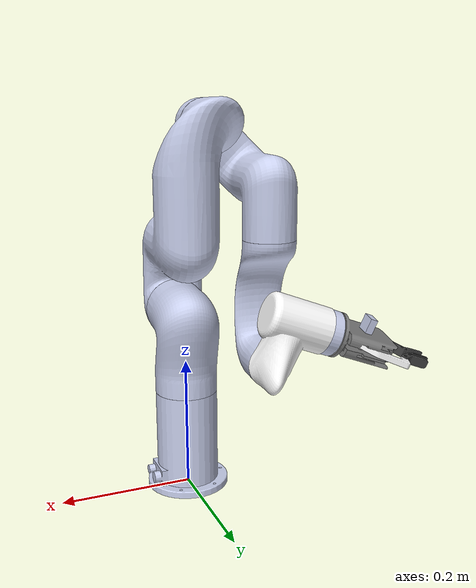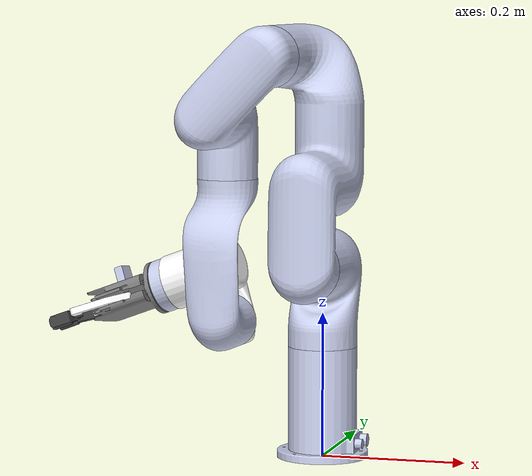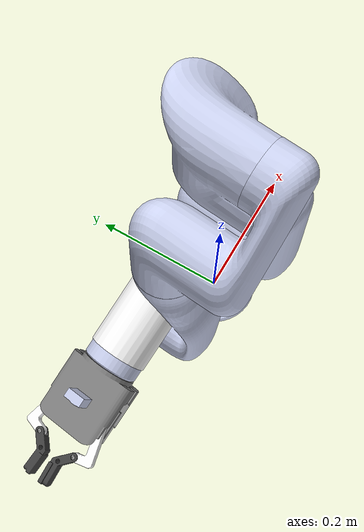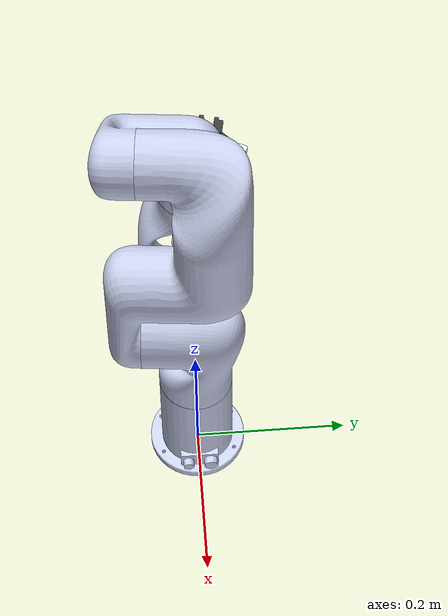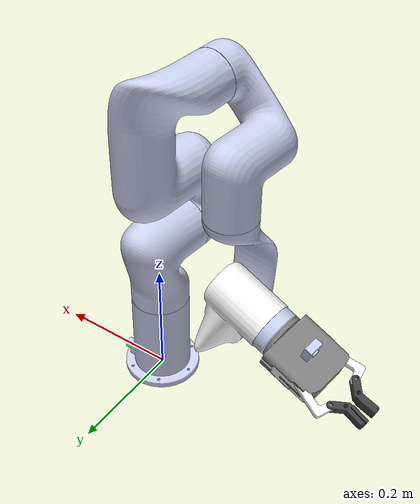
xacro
<?xml version="1.0"?>
<robot xmlns:xacro="http://www.ros.org/wiki/xacro" name="arm">

    <link name="world" />
    <joint name="base_joint" type="fixed">
        <parent link="world" />
        <child link="arm_base_link" />
        <origin rpy="0 0 3.142" xyz="0.0 0.0 0.0" />
    </joint>

    <link name="arm_base_link">
        <inertial>
            <origin xyz="-0.000473337349444787 -1.32028098241679E-05 0.07239105763563" rpy="0 0 0" />
            <mass value="1.14215420338987" />
            <inertia ixx="0.00307129989590757" ixy="-8.29782523845812E-07" ixz="-2.69723152811933E-05" iyy="0.00309572763575694" iyz="-7.52339424710021E-07" izz="0.00142221302621762" />
        </inertial>
        <visual>
            <origin xyz="0 0 0" rpy="0 0 0" />
            <geometry>
                <mesh filename="file:///home/imbatman/arm_ws/src/arm/meshes/arm_base_link.STL" />
            </geometry>
            <material name="">
                <color rgba="0.796078431372549 0.823529411764706 0.937254901960784 1" />
            </material>
        </visual>
        <collision>
            <origin xyz="0 0 0" rpy="0 0 0" />
            <geometry>
                <mesh filename="file:///home/imbatman/arm_ws/src/arm/meshes/arm_base_link.STL" />
            </geometry>
        </collision>
    </link>
    <link name="Link_1">
        <inertial>
            <origin xyz="-0.00165424841298431 0.000160925607043449 0.0844306458447921" rpy="0 0 0" />
            <mass value="1.30372268529311" />
            <inertia ixx="0.00340485151667065" ixy="4.73951898002371E-05" ixz="0.000218825292664858" iyy="0.003887980508731" iyz="-2.1277658692258E-05" izz="0.0019602389123672" />
        </inertial>
        <visual>
            <origin xyz="0 0 0" rpy="0 0 0" />
            <geometry>
                <mesh filename="file:///home/imbatman/arm_ws/src/arm/meshes/Link_1.STL" />
            </geometry>
            <material name="">
                <color rgba="0.792156862745098 0.819607843137255 0.933333333333333 1" />
            </material>
        </visual>
        <collision>
            <origin xyz="0 0 0" rpy="0 0 0" />
            <geometry>
                <mesh filename="file:///home/imbatman/arm_ws/src/arm/meshes/Link_1.STL" />
            </geometry>
        </collision>
    </link>

    <link name="Link_2">
        <inertial>
            <origin xyz="0.00466897689329795 -0.162155529525145 -0.0536740155305947" rpy="0 0 0" />
            <mass value="2.97373269361303" />
            <inertia ixx="0.0324167102807371" ixy="0.00297981473551184" ixz="-0.000417973991868469" iyy="0.00996768059711576" iyz="-0.00718854159517085" izz="0.0278574337135304" />
        </inertial>
        <visual>
            <origin xyz="0 0 0" rpy="0 0 0" />
            <geometry>
                <mesh filename="file:///home/imbatman/arm_ws/src/arm/meshes/Link_2.STL" />
            </geometry>
            <material name="">
                <color rgba="0.792156862745098 0.819607843137255 0.933333333333333 1" />
            </material>
        </visual>
        <collision>
            <origin xyz="0 0 0" rpy="0 0 0" />
            <geometry>
                <mesh filename="file:///home/imbatman/arm_ws/src/arm/meshes/Link_2.STL" />
            </geometry>
        </collision>
    </link>

    <link name="Link_3">
        <inertial>
            <origin xyz="0.0625571705747566 0.0757694435809385 -0.0197412102243116" rpy="0 0 0" />
            <mass value="1.45765591046506" />
            <inertia ixx="0.00668130936621989" ixy="-0.00179290985390331" ixz="0.00110761034441912" iyy="0.00505646179124057" iyz="0.00210611277510792" izz="0.00576711177260289" />
        </inertial>
        <visual>
            <origin xyz="0 0 0" rpy="0 0 0" />
            <geometry>
                <mesh filename="file:///home/imbatman/arm_ws/src/arm/meshes/Link_3.STL" />
            </geometry>
            <material name="">
                <color rgba="0.792156862745098 0.819607843137255 0.933333333333333 1" />
            </material>
        </visual>
        <collision>
            <origin xyz="0 0 0" rpy="0 0 0" />
            <geometry>
                <mesh filename="file:///home/imbatman/arm_ws/src/arm/meshes/Link_3.STL" />
            </geometry>
        </collision>
    </link>

    <link name="Link_4">
        <inertial>
            <origin xyz="0.00285172563081149 -0.0260073157026074 0.123071893834179" rpy="0 0 0" />
            <mass value="0.681236680376837" />
            <inertia ixx="0.00500336377068867" ixy="2.58053015699419E-05" ixz="-2.97059053335618E-05" iyy="0.00481793578053504" iyz="0.0004000736752812" izz="0.000727383609966516" />
        </inertial>
        <visual>
            <origin xyz="0 0 0" rpy="0 0 0" />
            <geometry>
                <mesh filename="file:///home/imbatman/arm_ws/src/arm/meshes/Link_4.STL" />
            </geometry>
            <material name="">
                <color rgba="0.792156862745098 0.819607843137255 0.933333333333333 1" />
            </material>
        </visual>
        <collision>
            <origin xyz="0 0 0" rpy="0 0 0" />
            <geometry>
                <mesh filename="file:///home/imbatman/arm_ws/src/arm/meshes/Link_4.STL" />
            </geometry>
        </collision>
    </link>

    <link name="Link_5">
        <inertial>
            <origin xyz="0.0286748088454602 0.0507749814554782 0.0178696299113226" rpy="0 0 0" />
            <mass value="0.669420581705739" />
            <inertia ixx="0.00103371950695079" ixy="-0.000251635215467511" ixz="5.62376905693041E-05" iyy="0.000906027580900811" iyz="0.000124543947445442" izz="0.00143040150433598" />
        </inertial>
        <visual>
            <origin xyz="0 0 0" rpy="0 0 0" />
            <geometry>
                <mesh filename="file:///home/imbatman/arm_ws/src/arm/meshes/Link_5.STL" />
            </geometry>
            <material name="">
                <color rgba="1 1 1 1" />
            </material>
        </visual>
        <collision>
            <origin xyz="0 0 0" rpy="0 0 0" />
            <geometry>
                <mesh filename="file:///home/imbatman/arm_ws/src/arm/meshes/Link_5.STL" />
            </geometry>
        </collision>
    </link>

    <link name="End_effector">
        <inertial>
            <origin xyz="1.79542801708177E-05 -0.000122480752124874 0.0096061474499399" rpy="0 0 0" />
            <mass value="0.0806378641781996" />
            <inertia ixx="3.24265145588332E-05" ixy="8.12727483201835E-08" ixz="-8.01864845172061E-10" iyy="3.18840006785951E-05" iyz="5.47017248285155E-09" izz="5.90805865629779E-05" />
        </inertial>
        <visual>
            <origin xyz="0 0 0" rpy="0 0 0" />
            <geometry>
                <mesh filename="file:///home/imbatman/arm_ws/src/arm/meshes/End_effector.STL" />
            </geometry>
            <material name="">
                <color rgba="0.792156862745098 0.819607843137255 0.933333333333333 1" />
            </material>
        </visual>
        <collision>
            <origin xyz="0 0 0" rpy="0 0 0" />
            <geometry>
                <mesh filename="file:///home/imbatman/arm_ws/src/arm/meshes/End_effector.STL" />
            </geometry>
        </collision>
    </link>

    <link name="Gripper_base">
        <inertial>
            <origin xyz="7.70182675857711E-06 -3.45372920922127E-07 0.0440536598355998" rpy="0 0 0" />
            <mass value="0.144340160157627" />
            <inertia ixx="0.00021511317736329" ixy="2.00140097060607E-05" ixz="1.79902238875265E-08" iyy="0.000154298584782079" iyz="-8.00652364350352E-10" izz="0.000101455826246438" />
        </inertial>
        <visual>
            <origin xyz="0 0 0" rpy="0 0 0" />
            <geometry>
                <mesh filename="file:///home/imbatman/arm_ws/src/arm/meshes/Gripper_base.STL" />
            </geometry>
            <material name="">
                <color rgba="0.501960784313725 0.501960784313725 0.501960784313725 1" />
            </material>
        </visual>
        <collision>
            <origin xyz="0 0 0" rpy="0 0 0" />
            <geometry>
                <mesh filename="file:///home/imbatman/arm_ws/src/arm/meshes/Gripper_base.STL" />
            </geometry>
        </collision>
    </link>

    <link name="Gripper_arm_left">
        <inertial>
            <origin xyz="0.0415392668558662 0.018365565064578 0.0104837110778671" rpy="0 0 0" />
            <mass value="0.0127678157416076" />
            <inertia ixx="1.42841391003646E-06" ixy="-2.11525861803004E-06" ixz="-6.33763992249554E-07" iyy="8.95021294973568E-06" iyz="-3.35016397061264E-07" izz="9.96799180030045E-06" />
        </inertial>
        <visual>
            <origin xyz="0 0 0" rpy="0 0 0" />
            <geometry>
                <mesh filename="file:///home/imbatman/arm_ws/src/arm/meshes/Gripper_arm_left.STL" />
            </geometry>
            <material name="">
                <color rgba="1 1 1 1" />
            </material>
        </visual>
        <collision>
            <origin xyz="0 0 0" rpy="0 0 0" />
            <geometry>
                <mesh filename="file:///home/imbatman/arm_ws/src/arm/meshes/Gripper_arm_left.STL" />
            </geometry>
        </collision>
    </link>

    <link name="left_finger">
        <inertial>
            <origin xyz="0.0276961872778643 -0.0147135019401428 0.00437246794423679" rpy="0 0 0" />
            <mass value="0.0111036375733557" />
            <inertia ixx="6.4850387494873E-07" ixy="5.06604740618564E-07" ixz="1.51784530404508E-07" iyy="2.82215176126583E-06" iyz="-2.48616489402422E-08" izz="2.89768159875783E-06" />
        </inertial>
        <visual>
            <origin xyz="0 0 0" rpy="0 0 0" />
            <geometry>
                <mesh filename="file:///home/imbatman/arm_ws/src/arm/meshes/left_finger.STL" />
            </geometry>
            <material name="">
                <color rgba="0.250980392156863 0.250980392156863 0.250980392156863 1" />
            </material>
        </visual>
        <collision>
            <origin xyz="0 0 0" rpy="0 0 0" />
            <geometry>
                <mesh filename="file:///home/imbatman/arm_ws/src/arm/meshes/left_finger.STL" />
            </geometry>
        </collision>
    </link>

    <link name="Gripper_arm_right">
        <inertial>
            <origin xyz="0.0415392668558654 -0.0183655650645822 -0.0104837110778671" rpy="0 0 0" />
            <mass value="0.0127678157416076" />
            <inertia ixx="1.42841391003647E-06" ixy="2.11525861803006E-06" ixz="6.33763992249559E-07" iyy="8.95021294973568E-06" iyz="-3.35016397061264E-07" izz="9.96799180030045E-06" />
        </inertial>
        <visual>
            <origin xyz="0 0 0" rpy="0 0 0" />
            <geometry>
                <mesh filename="file:///home/imbatman/arm_ws/src/arm/meshes/Gripper_arm_right.STL" />
            </geometry>
            <material name="">
                <color rgba="1 1 1 1" />
            </material>
        </visual>
        <collision>
            <origin xyz="0 0 0" rpy="0 0 0" />
            <geometry>
                <mesh filename="file:///home/imbatman/arm_ws/src/arm/meshes/Gripper_arm_right.STL" />
            </geometry>
        </collision>
    </link>

    <link name="Right_finger">
        <inertial>
            <origin xyz="0.027616145582933 0.0148633586436651 -0.00432757204095563" rpy="0 0 0" />
            <mass value="0.0111036338959234" />
            <inertia ixx="6.54555696498015E-07" ixy="-5.18309449389992E-07" ixz="-1.5529184263656E-07" iyy="2.81659729446906E-06" iyz="-2.65257515723312E-08" izz="2.8971822175015E-06" />
        </inertial>
        <visual>
            <origin xyz="0 0 0" rpy="0 0 0" />
            <geometry>
                <mesh filename="file:///home/imbatman/arm_ws/src/arm/meshes/Right_finger.STL" />
            </geometry>
            <material name="">
                <color rgba="0.250980392156863 0.250980392156863 0.250980392156863 1" />
            </material>
        </visual>
        <collision>
            <origin xyz="0 0 0" rpy="0 0 0" />
            <geometry>
                <mesh filename="file:///home/imbatman/arm_ws/src/arm/meshes/Right_finger.STL" />
            </geometry>
        </collision>
    </link>

    <link name="RGB_camera">
        <inertial>
            <origin xyz="0.00952416675236908 0.000322242755626256 -0.0086020702736585" rpy="0 0 0" />
            <mass value="0.00851529124922691" />
            <inertia ixx="5.72032823016266E-07" ixy="-1.40620704134015E-22" ixz="3.97046694025453E-22" iyy="5.72032823016266E-07" iyz="-2.64697796016969E-23" izz="8.87510252850143E-07" />
        </inertial>
        <visual>
            <origin xyz="0 0 0" rpy="0 0 0" />
            <geometry>
                <mesh filename="file:///home/imbatman/arm_ws/src/arm/meshes/RGB_camera.STL" />
            </geometry>
            <material name="">
                <color rgba="0.792156862745098 0.819607843137255 0.933333333333333 1" />
            </material>
        </visual>
        <collision>
            <origin xyz="0 0 0" rpy="0 0 0" />
            <geometry>
                <mesh filename="file:///home/imbatman/arm_ws/src/arm/meshes/RGB_camera.STL" />
            </geometry>
        </collision>
    </link>

    <joint name="Joint_1" type="revolute">
        <origin xyz="0 0 0.154" rpy="0 0 -1.5707963267949" />
        <parent link="arm_base_link" />
        <child link="Link_1" />
        <axis xyz="0 0 -1" />
        <limit lower="0" upper="6.28" effort="11" velocity="2" />
    </joint>

    <joint name="Joint_2" type="revolute">
        <origin xyz="-0.0650932810459635 0.00632651267849924 0.115" rpy="-1.5707963267949 0 1.5707963267949" />
        <parent link="Link_1" />
        <child link="Link_2" />
        <axis xyz="-0.0967356678669598 0 -0.995310107736445" />
        <limit lower="0" upper="2.059" effort="11" velocity="2" />
    </joint>

    <joint name="Joint_3" type="revolute">
        <origin xyz="0.0530599818434298 -0.28455 -0.00515697845398792" rpy="0 0 0" />
        <parent link="Link_2" />
        <child link="Link_3" />
        <axis xyz="-0.0967356678669597 0 -0.995310107736445" />
        <limit lower="0" upper="3.8" effort="11" velocity="2" />
    </joint>

    <joint name="Joint_4" type="revolute">
        <origin xyz="0.0784902400245383 0.17127 -0.0648971665089489" rpy="-1.5707963267949 0 0" />
        <parent link="Link_3" />
        <child link="Link_4" />
        <axis xyz="0 0 -1" />
        <limit lower="0" upper="6.28" effort="11" velocity="2" />
    </joint>

    <joint name="Joint_5" type="revolute">
        <origin xyz="-0.000337607480855595 0.00347363227600019 0.2" rpy="-1.5707963267949 0 0" />
        <parent link="Link_4" />
        <child link="Link_5" />
        <axis xyz="0.0967356678669599 0 -0.995310107736445" />
        <limit lower="-0.83" upper="2.9" effort="11" velocity="2" />
    </joint>

    <joint name="End_effector_Joint" type="revolute">
        <origin xyz="0.0872672717341501 0.0490789751008787 0.0185287556820571" rpy="1.47993501318796 -0.0336819095690923 1.21676367586924" />
        <parent link="Link_5" />
        <child link="End_effector" />
        <axis xyz="0 0 -1" />
        <limit lower="0" upper="6.28" effort="11" velocity="2" />
    </joint>

    <joint name="Gripper_base_joint" type="fixed">
        <origin xyz="0 0 0.0171450000000004" rpy="0 0 -0.145551942518358" />
        <parent link="End_effector" />
        <child link="Gripper_base" />
        <axis xyz="0 0 0" />
    </joint>

    <joint name="Gripper_arm_left_Joint" type="revolute">
        <origin xyz="0 -0.0166250000000014 0.0488750000000003" rpy="3.03621521440085 -1.57079631189374 0.0947157459884758" />
        <parent link="Gripper_base" />
        <child link="Gripper_arm_left" />
        <axis xyz="0 0.287009841740442 -0.957927633354486" />
        <limit lower="-1.22" upper="0.06" effort="11" velocity="2" />
    </joint>

    <joint name="left_finger_joint" type="fixed">
        <origin xyz="0.0760387769781833 0.012682131802507 0" rpy="0 0 0" />
        <parent link="Gripper_arm_left" />
        <child link="left_finger" />
        <axis xyz="0 0 0" />
    </joint>

    <joint name="Gripper_arm_right_Joint" type="revolute">
        <origin xyz="0 0.0166249999999972 0.0488750000000009" rpy="3.04926331885819 -1.57079631189374 0.0947157459884758" />
        <parent link="Gripper_base" />
        <child link="Gripper_arm_right" />
        <axis xyz="0 0.287009841740441 -0.957927633354486" />
        <limit lower="-1.22" upper="0.06" effort="11" velocity="2" />
        <mimic joint="Gripper_arm_left_Joint" multiplier="-1" offset="0" />
    </joint>

    <joint name="Right_finger_Joint" type="fixed">
        <origin xyz="0.0760387769781832 -0.012682131802507 0" rpy="0 0 0" />
        <parent link="Gripper_arm_right" />
        <child link="Right_finger" />
        <axis xyz="0 0 0" />
    </joint>

    <joint name="RGB_camera_Joint" type="fixed">
        <origin xyz="0.0328520110000001 0 0.0625449999999999" rpy="0 0 1.68252695082463" />
        <parent link="Gripper_base" />
        <child link="RGB_camera" />
        <axis xyz="0 0 0" />
    </joint>

</robot>
